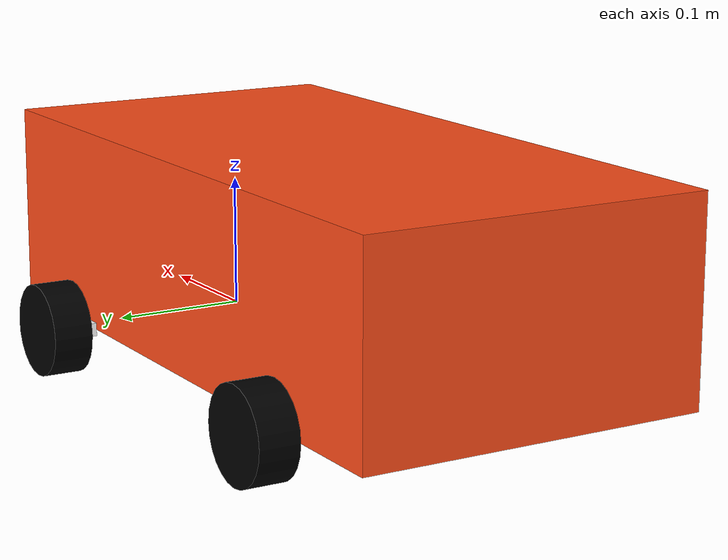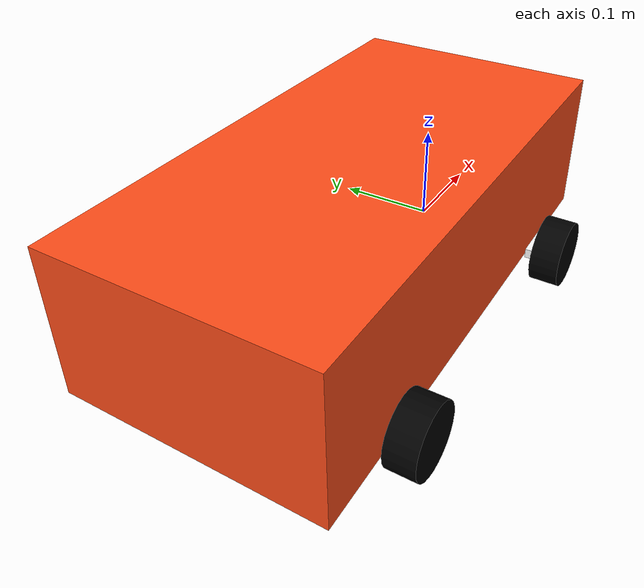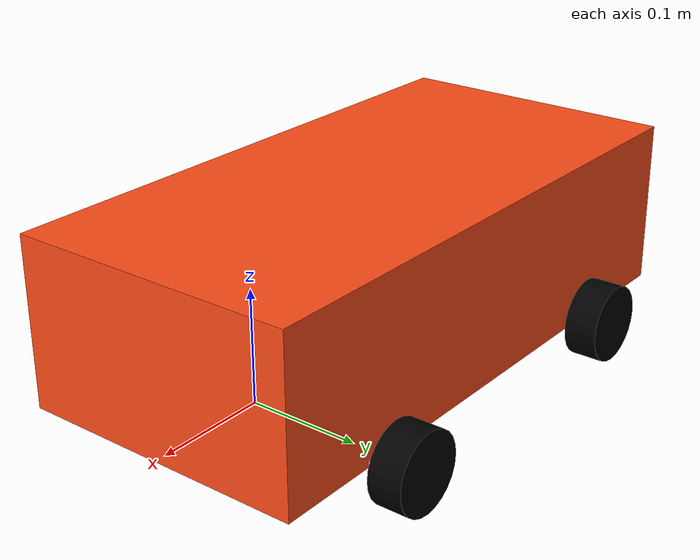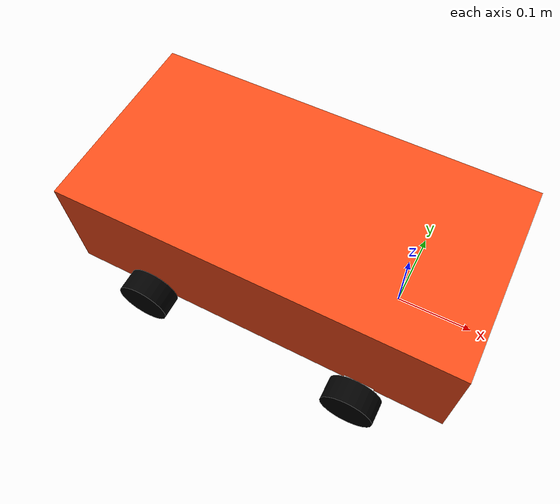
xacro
<?xml version="1.0"?>
<robot xmlns:xacro="http://www.ros.org/wiki/xacro" >

    <xacro:property name="chassis_length" value="0.52"/>
    <xacro:property name="chassis_width" value="0.26"/>
    <xacro:property name="chassis_height" value="0.15"/>
    <xacro:property name="wheels_lenght_STEERING" value="0.15"/>
    <xacro:property name="wheels_lenght_atraction" value="0.15"/>

    <xacro:property name="wheel_radius" value="0.035"/>
    <xacro:property name="wheel_length" value="0.03"/>
    <xacro:property name="wheel_steering_arm" value="0.01"/>
    <xacro:property name="wheel_mass" value="0.05"/>

    <xacro:property name="pi" value="3.14159265359"/>
    <xacro:include filename="inertial_macros.xacro"/>

    <!-- COLORS -->
    <material name="white">
        <color rgba="1 1 1 1" />
    </material>

    <material name="orange">
        <color rgba="1 0.3 0.1 1"/>
    </material>

    <material name="blue">
        <color rgba="0.2 0.2 1 1"/>
    </material>

    <material name="black">
        <color rgba="0 0 0 1"/>
    </material>

    <material name="red">
        <color rgba="1 0 0 1"/>
    </material>

    <!-- BASE LINK -->
    <link name="base_link">

    </link>

    <!-- CHASSIS -->
    <joint name="chassis_joint" type="fixed">
        <parent link="base_link"/>
        <child link="chassis"/>
        <origin xyz="-${wheels_lenght_STEERING} 0 0"/>
    </joint>

    <link name="chassis">
        <visual>
            <origin xyz="0 0 ${chassis_height/2}"/>
            <geometry>
                <box size="${chassis_length} ${chassis_width} ${chassis_height}"/>
            </geometry>
            <material name="orange"/>
        </visual>
        <collision>
            <origin xyz="0 0 ${chassis_height/2}"/>
            <geometry>
                <box size="${chassis_length} ${chassis_width} ${chassis_height}"/>
            </geometry>
        </collision>
        <xacro:inertial_box mass="1" x="${chassis_length}" y="${chassis_width}" z="${chassis_height}">
            <origin xyz="0 0 ${chassis_height/2}" rpy="0 0 0"/>
        </xacro:inertial_box>
    </link>

    <!-- PARENT STEERING ARM -->
    <joint name="parent_steering_joint" type="revolute">
        <parent link="base_link"/>
        <child link="parent_steering_arm"/>
        <origin xyz="0 0 0"/>
        <limit lower="-${pi}" upper="${pi}" effort="100" velocity="3"/>
        <axis xyz="0 0 1"/>
   </joint>

    <link name="parent_steering_arm">
        <visual>
            <geometry>
                <box size="${wheel_steering_arm*4} ${wheel_steering_arm} ${wheel_steering_arm}"/>
            </geometry>
        <material name="white"/>
        </visual>
    </link>

    <!-- LEFT STEERING ARM -->
    <link name="left_steering_arm">
        <visual>
            <geometry>
                <box size="${wheel_steering_arm*4} ${wheel_steering_arm} ${wheel_steering_arm}"/>
            </geometry>
        <material name="white"/>
        </visual>
    </link>

    <joint name="left_steering_joint" type="fixed">
        <parent link="parent_steering_arm"/>
        <child link="left_steering_arm"/>
        <origin xyz="0 -${chassis_width/2+wheel_steering_arm/2} 0"/>
    </joint>

    <!-- LEFT FRONT WHEEL -->
    <link name="left_front_wheel">
        <visual>
            <geometry>
                <cylinder radius="${wheel_radius}" length="${wheel_length}"/>
            </geometry>
            <material name="black"/>
        </visual>
        <collision>
            <geometry>
                <sphere radius="${wheel_radius}"/>
            </geometry>
        </collision>
        <xacro:inertial_cylinder mass="${wheel_mass}" length="${wheel_length}" radius="${wheel_radius}">
            <origin xyz="0 0 0" rpy="0 0 0"/>
        </xacro:inertial_cylinder>
    </link>

    <gazebo reference="left_wheel">
        <material>Gazebo/Blue</material>
    </gazebo>

    <joint name="left_front_wheel_joint" type="continuous">
        <parent link="left_steering_arm"/>
        <child link="left_front_wheel"/>
        <origin xyz="0 -${wheel_steering_arm/2 + wheel_length/2} 0" rpy="-${pi/2} 0 0" />
        <axis xyz="0 0 1"/>
    </joint>

    <!-- RIGHT STEERING ARM -->
    <link name="right_steering_arm">
        <visual>
            <geometry>
                <box size="${wheel_steering_arm*4} ${wheel_steering_arm} ${wheel_steering_arm}"/>
            </geometry>
        <material name="white"/>
        </visual>
    </link>

    <joint name="right_steering_joint" type="fixed">
        <parent link="parent_steering_arm"/>
        <child link="right_steering_arm"/>
        <origin xyz="0 ${chassis_width/2+wheel_steering_arm/2} 0"/>
    </joint>

    <!-- RIGHT FRONT WHEEL -->
    <link name="right_front_wheel">
        <visual>
            <geometry>
                <cylinder radius="${wheel_radius}" length="${wheel_length}"/>
            </geometry>
            <material name="black"/>
        </visual>
        <collision>
            <geometry>
                <sphere radius="${wheel_radius}"/>
            </geometry>
        </collision>
        <xacro:inertial_cylinder mass="${wheel_mass}" length="${wheel_length}" radius="${wheel_radius}">
            <origin xyz="0 0 0" rpy="0 0 0"/>
        </xacro:inertial_cylinder>
    </link>

    <gazebo reference="right_wheel">
        <material>Gazebo/Blue</material>
    </gazebo>

    <joint name="right_front_wheel_joint" type="continuous">
        <parent link="right_steering_arm"/>
        <child link="right_front_wheel"/>
        <origin xyz="0 ${wheel_steering_arm/2 + wheel_length/2} 0" rpy="${pi/2} 0 0" />
        <axis xyz="0 0 1"/>
    </joint>

    <!-- PARENT TRACTION ARM -->
    <joint name="parent_traction_joint" type="continuous">
        <parent link="chassis"/>
        <child link="parent_traction_arm"/>
        <origin xyz="-${wheels_lenght_atraction} 0 0" rpy="${pi/2} 0 0" />
        <axis xyz="0 0 1"/>
   </joint>

    <link name="parent_traction_arm">
        <visual>
            <geometry>
                <cylinder radius="${wheel_radius}" length="${wheel_length}"/>
            </geometry>
            <material name="black"/>
        </visual>
    </link>

    <!-- RIGHT REAR WHEEL -->
    <link name="right_rear_wheel">
        <visual>
            <geometry>
                <cylinder radius="${wheel_radius}" length="${wheel_length}"/>
            </geometry>
            <material name="black"/>
        </visual>
        <collision>
            <geometry>
                <sphere radius="${wheel_radius}"/>
            </geometry>
        </collision>
        <xacro:inertial_cylinder mass="${wheel_mass}" length="${wheel_length}" radius="${wheel_radius}">
            <origin xyz="0 0 0" rpy="0 0 0"/>
        </xacro:inertial_cylinder>
    </link>

    <joint name="right_rear_wheel_joint" type="fixed">
        <parent link="parent_traction_arm"/>
        <child link="right_rear_wheel"/>
        <origin xyz=" 0 0 ${chassis_width/2+wheel_length/2}" rpy="0 0 0" />
    </joint>

    <!-- LEFT REAR WHEEL -->
    <link name="left_rear_wheel">
        <visual>
            <geometry>
                <cylinder radius="${wheel_radius}" length="${wheel_length}"/>
            </geometry>
            <material name="black"/>
        </visual>
        <collision>
            <geometry>
                <sphere radius="${wheel_radius}"/>
            </geometry>
        </collision>
        <xacro:inertial_cylinder mass="${wheel_mass}" length="${wheel_length}" radius="${wheel_radius}">
            <origin xyz="0 0 0" rpy="0 0 0"/>
        </xacro:inertial_cylinder>
    </link>

    <joint name="left_rear_wheel_joint" type="fixed">
        <parent link="parent_traction_arm"/>
        <child link="left_rear_wheel"/>
        <origin xyz=" 0 0 -${chassis_width/2+wheel_length/2}" rpy="0 0 0" />
    </joint>

</robot>
